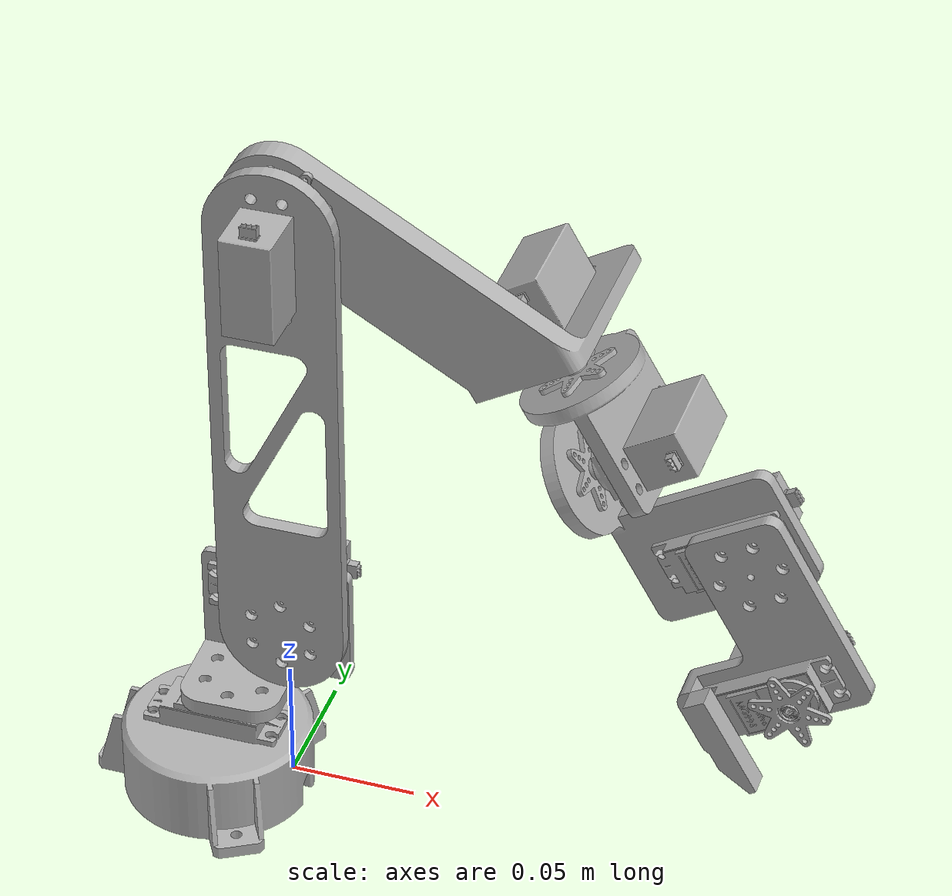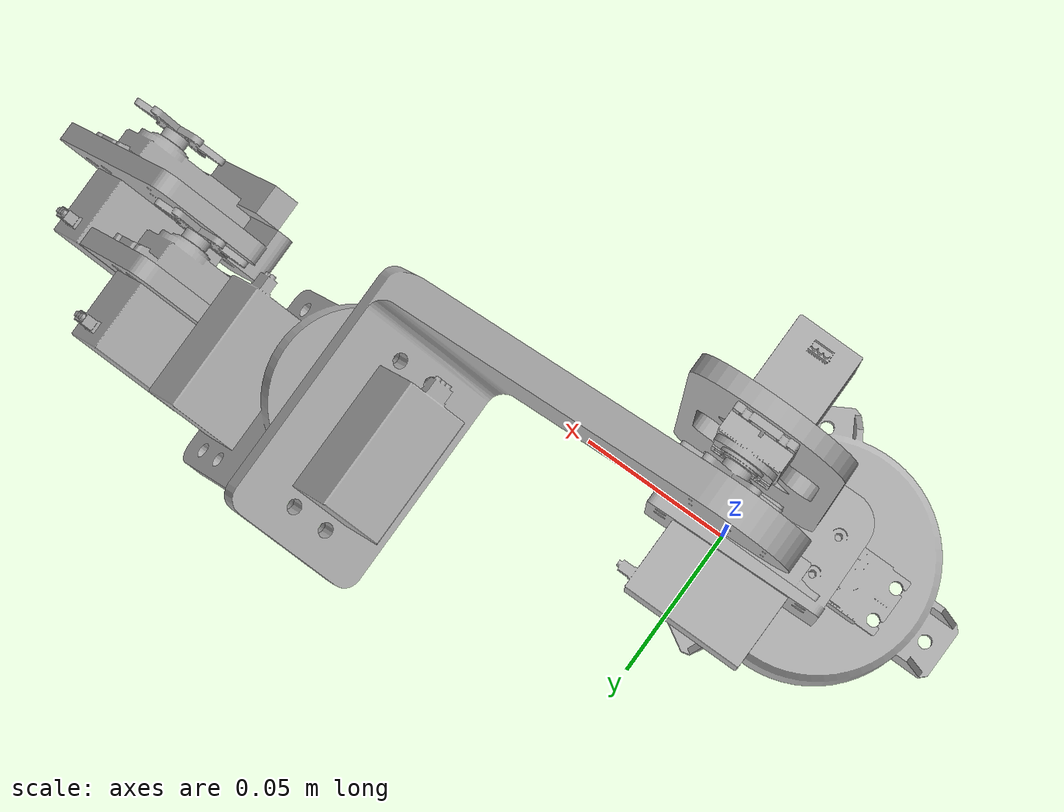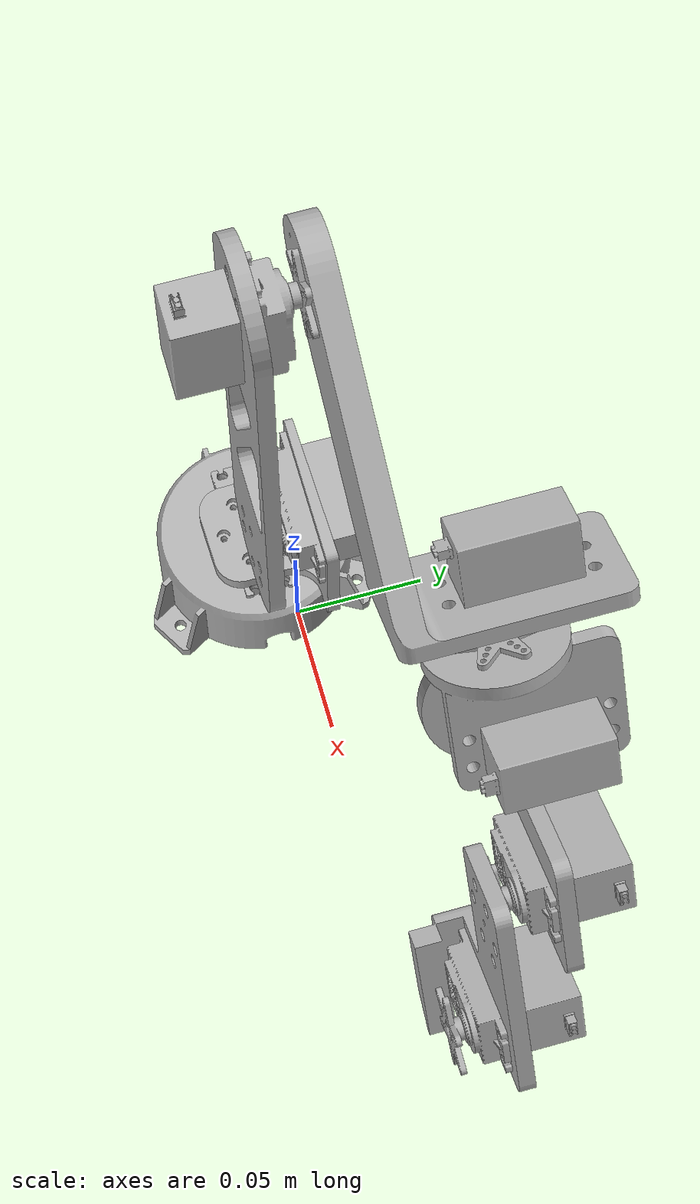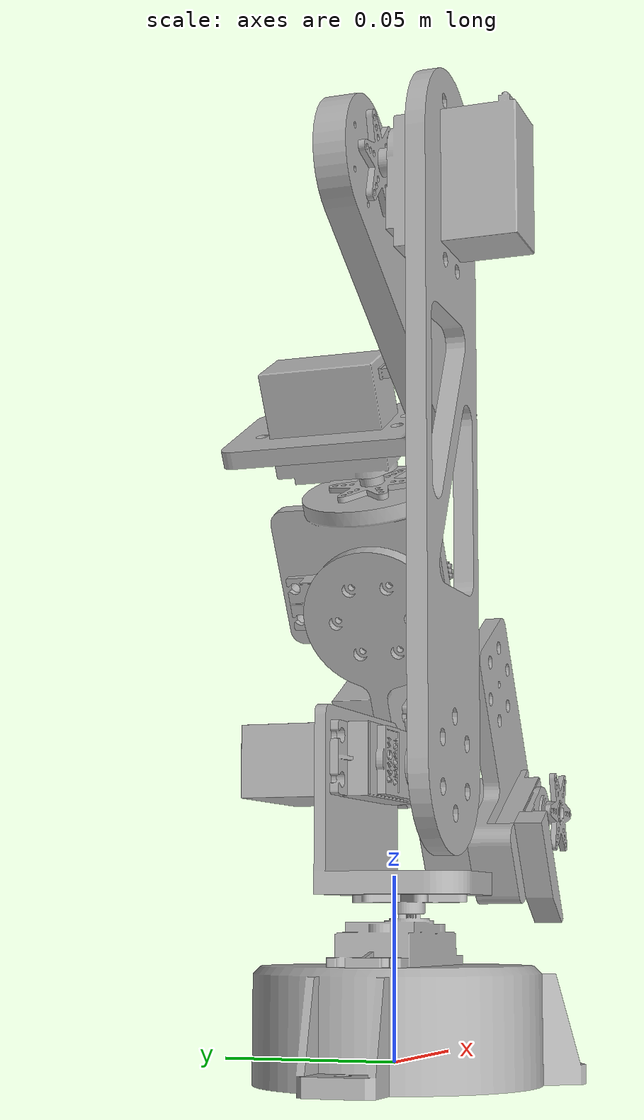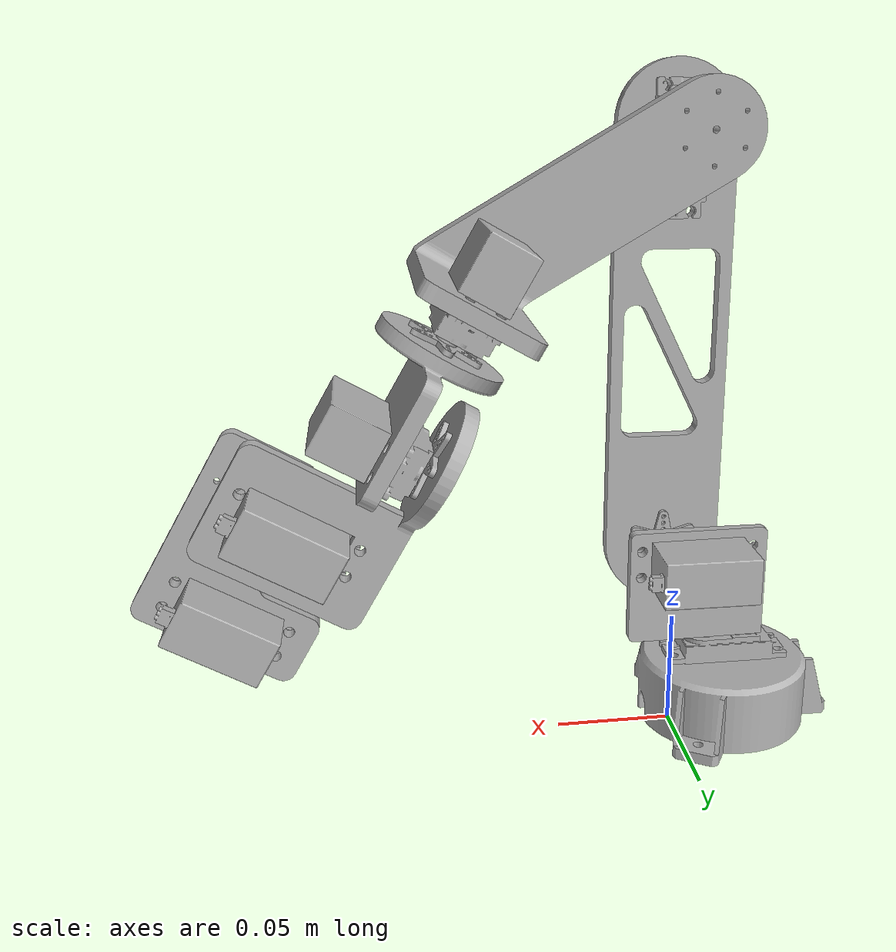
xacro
<?xml version="1.0" ?>
<robot name="ARM" xmlns:xacro="http://www.ros.org/wiki/xacro">

<xacro:include filename="$(find ARM_description)/urdf/materials.xacro" />
<xacro:include filename="$(find ARM_description)/urdf/ARM.trans" />
<xacro:include filename="$(find ARM_description)/urdf/ARM.gazebo" />
<link name="base_link">
  <inertial>
    <origin xyz="-0.027687508233667585 -0.009874493990394872 0.013622191573779039" rpy="0 0 0"/>
    <mass value="0.041165791000229615"/>
    <inertia ixx="2.9e-05" iyy="2.8e-05" izz="4.9e-05" ixy="-0.0" iyz="0.0" ixz="-0.0"/>
  </inertial>
  <visual>
    <origin xyz="0 0 0" rpy="0 0 0"/>
    <geometry>
      <mesh filename="package://ARM_description/meshes/base_link.stl" scale="0.001 0.001 0.001"/>
    </geometry>
    <material name="silver"/>
  </visual>
  <collision>
    <origin xyz="0 0 0" rpy="0 0 0"/>
    <geometry>
      <mesh filename="package://ARM_description/meshes/base_link.stl" scale="0.001 0.001 0.001"/>
    </geometry>
  </collision>
</link>

<link name="servo1_1">
  <inertial>
    <origin xyz="-0.02419827578113218 0.005869936266980562 -0.008916853147137183" rpy="0 0 0"/>
    <mass value="0.03217556547489919"/>
    <inertia ixx="5e-06" iyy="9e-06" izz="6e-06" ixy="-0.0" iyz="-0.0" ixz="-0.0"/>
  </inertial>
  <visual>
    <origin xyz="0.00293 0.015749 -0.026326" rpy="0 0 0"/>
    <geometry>
      <mesh filename="package://ARM_description/meshes/servo1_1.stl" scale="0.001 0.001 0.001"/>
    </geometry>
    <material name="silver"/>
  </visual>
  <collision>
    <origin xyz="0.00293 0.015749 -0.026326" rpy="0 0 0"/>
    <geometry>
      <mesh filename="package://ARM_description/meshes/servo1_1.stl" scale="0.001 0.001 0.001"/>
    </geometry>
  </collision>
</link>

<link name="arm1_1">
  <inertial>
    <origin xyz="-2.2959174622930179e-07 -9.468866538422938e-08 0.0006818047302372884" rpy="0 0 0"/>
    <mass value="0.0008073587201557666"/>
    <inertia ixx="0.0" iyy="0.0" izz="0.0" ixy="-0.0" iyz="0.0" ixz="-0.0"/>
  </inertial>
  <visual>
    <origin xyz="0.017152 0.009879 -0.042636" rpy="0 0 0"/>
    <geometry>
      <mesh filename="package://ARM_description/meshes/arm1_1.stl" scale="0.001 0.001 0.001"/>
    </geometry>
    <material name="silver"/>
  </visual>
  <collision>
    <origin xyz="0.017152 0.009879 -0.042636" rpy="0 0 0"/>
    <geometry>
      <mesh filename="package://ARM_description/meshes/arm1_1.stl" scale="0.001 0.001 0.001"/>
    </geometry>
  </collision>
</link>

<link name="link_1_v1_1">
  <inertial>
    <origin xyz="-0.005726009708927604 0.01543218502870585 0.011798125763824358" rpy="0 0 0"/>
    <mass value="0.016502593024701057"/>
    <inertia ixx="5e-06" iyy="8e-06" izz="7e-06" ixy="-1e-06" iyz="-1e-06" ixz="-1e-06"/>
  </inertial>
  <visual>
    <origin xyz="0.005461 0.016629 -0.044636" rpy="0 0 0"/>
    <geometry>
      <mesh filename="package://ARM_description/meshes/link_1_v1_1.stl" scale="0.001 0.001 0.001"/>
    </geometry>
    <material name="silver"/>
  </visual>
  <collision>
    <origin xyz="0.005461 0.016629 -0.044636" rpy="0 0 0"/>
    <geometry>
      <mesh filename="package://ARM_description/meshes/link_1_v1_1.stl" scale="0.001 0.001 0.001"/>
    </geometry>
  </collision>
</link>

<link name="servo2_1">
  <inertial>
    <origin xyz="-0.024198734963923163 0.008916593288586981 -0.005874134214239088" rpy="0 0 0"/>
    <mass value="0.03217556547489919"/>
    <inertia ixx="5e-06" iyy="6e-06" izz="9e-06" ixy="0.0" iyz="0.0" ixz="-0.0"/>
  </inertial>
  <visual>
    <origin xyz="-0.017426 -0.006431 -0.08651" rpy="0 0 0"/>
    <geometry>
      <mesh filename="package://ARM_description/meshes/servo2_1.stl" scale="0.001 0.001 0.001"/>
    </geometry>
    <material name="silver"/>
  </visual>
  <collision>
    <origin xyz="-0.017426 -0.006431 -0.08651" rpy="0 0 0"/>
    <geometry>
      <mesh filename="package://ARM_description/meshes/servo2_1.stl" scale="0.001 0.001 0.001"/>
    </geometry>
  </collision>
</link>

<link name="arm_2_1">
  <inertial>
    <origin xyz="3.112258121803872e-07 0.00031793541121282083 -1.651702353777651e-07" rpy="0 0 0"/>
    <mass value="0.0008073587201557666"/>
    <inertia ixx="0.0" iyy="0.0" izz="0.0" ixy="0.0" iyz="0.0" ixz="0.0"/>
  </inertial>
  <visual>
    <origin xyz="-0.003203 0.009879 -0.080636" rpy="0 0 0"/>
    <geometry>
      <mesh filename="package://ARM_description/meshes/arm_2_1.stl" scale="0.001 0.001 0.001"/>
    </geometry>
    <material name="silver"/>
  </visual>
  <collision>
    <origin xyz="-0.003203 0.009879 -0.080636" rpy="0 0 0"/>
    <geometry>
      <mesh filename="package://ARM_description/meshes/arm_2_1.stl" scale="0.001 0.001 0.001"/>
    </geometry>
  </collision>
</link>

<link name="link_2_v1_1">
  <inertial>
    <origin xyz="-0.09512720068783112 -0.002991280188389983 -1.4610086869482064e-07" rpy="0 0 0"/>
    <mass value="0.04510837917580033"/>
    <inertia ixx="1.1e-05" iyy="0.000228" izz="0.000217" ixy="-0.0" iyz="0.0" ixz="1e-06"/>
  </inertial>
  <visual>
    <origin xyz="-0.016703 0.010879 -0.080636" rpy="0 0 0"/>
    <geometry>
      <mesh filename="package://ARM_description/meshes/link_2_v1_1.stl" scale="0.001 0.001 0.001"/>
    </geometry>
    <material name="silver"/>
  </visual>
  <collision>
    <origin xyz="-0.016703 0.010879 -0.080636" rpy="0 0 0"/>
    <geometry>
      <mesh filename="package://ARM_description/meshes/link_2_v1_1.stl" scale="0.001 0.001 0.001"/>
    </geometry>
  </collision>
</link>

<link name="servo3_1">
  <inertial>
    <origin xyz="-0.02460164258445402 -0.00891678266590214 -0.005874641233019728" rpy="0 0 0"/>
    <mass value="0.03217556547489919"/>
    <inertia ixx="5e-06" iyy="6e-06" izz="9e-06" ixy="0.0" iyz="-0.0" ixz="0.0"/>
  </inertial>
  <visual>
    <origin xyz="0.142219 0.010879 -0.086506" rpy="0 0 0"/>
    <geometry>
      <mesh filename="package://ARM_description/meshes/servo3_1.stl" scale="0.001 0.001 0.001"/>
    </geometry>
    <material name="silver"/>
  </visual>
  <collision>
    <origin xyz="0.142219 0.010879 -0.086506" rpy="0 0 0"/>
    <geometry>
      <mesh filename="package://ARM_description/meshes/servo3_1.stl" scale="0.001 0.001 0.001"/>
    </geometry>
  </collision>
</link>

<link name="arm3_1">
  <inertial>
    <origin xyz="3.112255078652204e-07 -0.00031812478852707646 3.2781150945127013e-07" rpy="0 0 0"/>
    <mass value="0.0008073587201557666"/>
    <inertia ixx="0.0" iyy="0.0" izz="0.0" ixy="-0.0" iyz="0.0" ixz="-0.0"/>
  </inertial>
  <visual>
    <origin xyz="0.176797 -0.005431 -0.080631" rpy="0 0 0"/>
    <geometry>
      <mesh filename="package://ARM_description/meshes/arm3_1.stl" scale="0.001 0.001 0.001"/>
    </geometry>
    <material name="silver"/>
  </visual>
  <collision>
    <origin xyz="0.176797 -0.005431 -0.080631" rpy="0 0 0"/>
    <geometry>
      <mesh filename="package://ARM_description/meshes/arm3_1.stl" scale="0.001 0.001 0.001"/>
    </geometry>
  </collision>
</link>

<link name="link_3_v1_1">
  <inertial>
    <origin xyz="0.06640093447647316 0.013462771179585144 0.024925384393764766" rpy="0 0 0"/>
    <mass value="0.0665001837063308"/>
    <inertia ixx="6.3e-05" iyy="0.000128" izz="0.000114" ixy="-2.4e-05" iyz="-1.3e-05" ixz="-4.8e-05"/>
  </inertial>
  <visual>
    <origin xyz="0.190297 -0.006431 -0.080631" rpy="0 0 0"/>
    <geometry>
      <mesh filename="package://ARM_description/meshes/link_3_v1_1.stl" scale="0.001 0.001 0.001"/>
    </geometry>
    <material name="silver"/>
  </visual>
  <collision>
    <origin xyz="0.190297 -0.006431 -0.080631" rpy="0 0 0"/>
    <geometry>
      <mesh filename="package://ARM_description/meshes/link_3_v1_1.stl" scale="0.001 0.001 0.001"/>
    </geometry>
  </collision>
</link>

<link name="servo4_1">
  <inertial>
    <origin xyz="-0.00891698534621474 -0.024602048498918137 -0.00587021660379225" rpy="0 0 0"/>
    <mass value="0.03217556547489919"/>
    <inertia ixx="6e-06" iyy="5e-06" izz="9e-06" ixy="0.0" iyz="-0.0" ixz="0.0"/>
  </inertial>
  <visual>
    <origin xyz="0.078682 -0.076009 -0.133884" rpy="0 0 0"/>
    <geometry>
      <mesh filename="package://ARM_description/meshes/servo4_1.stl" scale="0.001 0.001 0.001"/>
    </geometry>
    <material name="silver"/>
  </visual>
  <collision>
    <origin xyz="0.078682 -0.076009 -0.133884" rpy="0 0 0"/>
    <geometry>
      <mesh filename="package://ARM_description/meshes/servo4_1.stl" scale="0.001 0.001 0.001"/>
    </geometry>
  </collision>
</link>

<link name="arm4_1">
  <inertial>
    <origin xyz="-0.00031832746884104257 -9.468900594861163e-08 -1.8564814641131022e-07" rpy="0 0 0"/>
    <mass value="0.0008073587201557666"/>
    <inertia ixx="0.0" iyy="0.0" izz="0.0" ixy="-0.0" iyz="-0.0" ixz="0.0"/>
  </inertial>
  <visual>
    <origin xyz="0.062372 -0.041431 -0.128014" rpy="0 0 0"/>
    <geometry>
      <mesh filename="package://ARM_description/meshes/arm4_1.stl" scale="0.001 0.001 0.001"/>
    </geometry>
    <material name="silver"/>
  </visual>
  <collision>
    <origin xyz="0.062372 -0.041431 -0.128014" rpy="0 0 0"/>
    <geometry>
      <mesh filename="package://ARM_description/meshes/arm4_1.stl" scale="0.001 0.001 0.001"/>
    </geometry>
  </collision>
</link>

<link name="link_4_v1_1">
  <inertial>
    <origin xyz="0.015598136109428007 0.013253959916665618 -0.012008645565057624" rpy="0 0 0"/>
    <mass value="0.024369370112056882"/>
    <inertia ixx="9e-06" iyy="1.3e-05" izz="8e-06" ixy="-0.0" iyz="0.0" ixz="2e-06"/>
  </inertial>
  <visual>
    <origin xyz="0.061372 -0.02974 -0.134764" rpy="0 0 0"/>
    <geometry>
      <mesh filename="package://ARM_description/meshes/link_4_v1_1.stl" scale="0.001 0.001 0.001"/>
    </geometry>
    <material name="silver"/>
  </visual>
  <collision>
    <origin xyz="0.061372 -0.02974 -0.134764" rpy="0 0 0"/>
    <geometry>
      <mesh filename="package://ARM_description/meshes/link_4_v1_1.stl" scale="0.001 0.001 0.001"/>
    </geometry>
  </collision>
</link>

<link name="servo5_1">
  <inertial>
    <origin xyz="-0.005869821305817894 0.008916593288596779 0.024601768162112764" rpy="0 0 0"/>
    <mass value="0.03217556547489919"/>
    <inertia ixx="9e-06" iyy="6e-06" izz="5e-06" ixy="-0.0" iyz="0.0" ixz="0.0"/>
  </inertial>
  <visual>
    <origin xyz="0.015498 -0.041431 -0.093436" rpy="0 0 0"/>
    <geometry>
      <mesh filename="package://ARM_description/meshes/servo5_1.stl" scale="0.001 0.001 0.001"/>
    </geometry>
    <material name="silver"/>
  </visual>
  <collision>
    <origin xyz="0.015498 -0.041431 -0.093436" rpy="0 0 0"/>
    <geometry>
      <mesh filename="package://ARM_description/meshes/servo5_1.stl" scale="0.001 0.001 0.001"/>
    </geometry>
  </collision>
</link>

<link name="arm5_1">
  <inertial>
    <origin xyz="2.0964945105297894e-07 0.00031793541122177027 -1.856481521289588e-07" rpy="0 0 0"/>
    <mass value="0.0008073587201557666"/>
    <inertia ixx="0.0" iyy="0.0" izz="0.0" ixy="0.0" iyz="-0.0" ixz="0.0"/>
  </inertial>
  <visual>
    <origin xyz="0.021368 -0.025121 -0.128014" rpy="0 0 0"/>
    <geometry>
      <mesh filename="package://ARM_description/meshes/arm5_1.stl" scale="0.001 0.001 0.001"/>
    </geometry>
    <material name="silver"/>
  </visual>
  <collision>
    <origin xyz="0.021368 -0.025121 -0.128014" rpy="0 0 0"/>
    <geometry>
      <mesh filename="package://ARM_description/meshes/arm5_1.stl" scale="0.001 0.001 0.001"/>
    </geometry>
  </collision>
</link>

<link name="link_5_v1_1">
  <inertial>
    <origin xyz="0.015942000258827707 0.015167094007291288 -0.008494691741955551" rpy="0 0 0"/>
    <mass value="0.027120030921854613"/>
    <inertia ixx="1.6e-05" iyy="2.3e-05" izz="3.5e-05" ixy="-1e-05" iyz="1e-06" ixz="1e-06"/>
  </inertial>
  <visual>
    <origin xyz="0.009676 -0.024121 -0.134764" rpy="0 0 0"/>
    <geometry>
      <mesh filename="package://ARM_description/meshes/link_5_v1_1.stl" scale="0.001 0.001 0.001"/>
    </geometry>
    <material name="silver"/>
  </visual>
  <collision>
    <origin xyz="0.009676 -0.024121 -0.134764" rpy="0 0 0"/>
    <geometry>
      <mesh filename="package://ARM_description/meshes/link_5_v1_1.stl" scale="0.001 0.001 0.001"/>
    </geometry>
  </collision>
</link>

<link name="servo6_1">
  <inertial>
    <origin xyz="0.005874381503812066 -0.02209805884061384 -0.008916873625420471" rpy="0 0 0"/>
    <mass value="0.03217556547489919"/>
    <inertia ixx="9e-06" iyy="5e-06" izz="6e-06" ixy="0.0" iyz="-0.0" ixz="0.0"/>
  </inertial>
  <visual>
    <origin xyz="-0.020225 -0.081019 -0.128014" rpy="0 0 0"/>
    <geometry>
      <mesh filename="package://ARM_description/meshes/servo6_1.stl" scale="0.001 0.001 0.001"/>
    </geometry>
    <material name="silver"/>
  </visual>
  <collision>
    <origin xyz="-0.020225 -0.081019 -0.128014" rpy="0 0 0"/>
    <geometry>
      <mesh filename="package://ARM_description/meshes/servo6_1.stl" scale="0.001 0.001 0.001"/>
    </geometry>
  </collision>
</link>

<link name="arm6_1">
  <inertial>
    <origin xyz="4.124597055427115e-07 -1.2651133529661962e-08 -0.00031821574808221786" rpy="0 0 0"/>
    <mass value="0.0008073587201557666"/>
    <inertia ixx="0.0" iyy="0.0" izz="0.0" ixy="0.0" iyz="-0.0" ixz="0.0"/>
  </inertial>
  <visual>
    <origin xyz="-0.026099 -0.068897 -0.144324" rpy="0 0 0"/>
    <geometry>
      <mesh filename="package://ARM_description/meshes/arm6_1.stl" scale="0.001 0.001 0.001"/>
    </geometry>
    <material name="silver"/>
  </visual>
  <collision>
    <origin xyz="-0.026099 -0.068897 -0.144324" rpy="0 0 0"/>
    <geometry>
      <mesh filename="package://ARM_description/meshes/arm6_1.stl" scale="0.001 0.001 0.001"/>
    </geometry>
  </collision>
</link>

<link name="link_6_v1_1">
  <inertial>
    <origin xyz="0.018518185432594453 -0.0065174381265777764 0.006131177796755066" rpy="0 0 0"/>
    <mass value="0.025852765929466566"/>
    <inertia ixx="1.4e-05" iyy="1.8e-05" izz="3e-05" ixy="8e-06" iyz="2e-06" ixz="-2e-06"/>
  </inertial>
  <visual>
    <origin xyz="-0.039599 -0.068897 -0.145324" rpy="0 0 0"/>
    <geometry>
      <mesh filename="package://ARM_description/meshes/link_6_v1_1.stl" scale="0.001 0.001 0.001"/>
    </geometry>
    <material name="silver"/>
  </visual>
  <collision>
    <origin xyz="-0.039599 -0.068897 -0.145324" rpy="0 0 0"/>
    <geometry>
      <mesh filename="package://ARM_description/meshes/link_6_v1_1.stl" scale="0.001 0.001 0.001"/>
    </geometry>
  </collision>
</link>

<link name="servo7_1">
  <inertial>
    <origin xyz="-0.0058700877032318854 -0.024198288431977487 -0.008916873625923916" rpy="0 0 0"/>
    <mass value="0.03217556547489919"/>
    <inertia ixx="9e-06" iyy="5e-06" izz="6e-06" ixy="0.0" iyz="-0.0" ixz="0.0"/>
  </inertial>
  <visual>
    <origin xyz="-0.084334 -0.085047 -0.151324" rpy="0 0 0"/>
    <geometry>
      <mesh filename="package://ARM_description/meshes/servo7_1.stl" scale="0.001 0.001 0.001"/>
    </geometry>
    <material name="silver"/>
  </visual>
  <collision>
    <origin xyz="-0.084334 -0.085047 -0.151324" rpy="0 0 0"/>
    <geometry>
      <mesh filename="package://ARM_description/meshes/servo7_1.stl" scale="0.001 0.001 0.001"/>
    </geometry>
  </collision>
</link>

<link name="arm7_1">
  <inertial>
    <origin xyz="-5.674734082639077e-08 -2.422424980746962e-07 -0.00031821574858387214" rpy="0 0 0"/>
    <mass value="0.0008073587201557666"/>
    <inertia ixx="0.0" iyy="0.0" izz="0.0" ixy="0.0" iyz="-0.0" ixz="0.0"/>
  </inertial>
  <visual>
    <origin xyz="-0.078464 -0.070825 -0.167634" rpy="0 0 0"/>
    <geometry>
      <mesh filename="package://ARM_description/meshes/arm7_1.stl" scale="0.001 0.001 0.001"/>
    </geometry>
    <material name="silver"/>
  </visual>
  <collision>
    <origin xyz="-0.078464 -0.070825 -0.167634" rpy="0 0 0"/>
    <geometry>
      <mesh filename="package://ARM_description/meshes/arm7_1.stl" scale="0.001 0.001 0.001"/>
    </geometry>
  </collision>
</link>

<joint name="f1" type="fixed">
  <origin xyz="-0.00293 -0.015749 0.026326" rpy="0 0 0"/>
  <parent link="base_link"/>
  <child link="servo1_1"/>
</joint>

<joint name="joint1" type="revolute">
  <origin xyz="-0.014222 0.00587 0.01631" rpy="0 0 0"/>
  <parent link="servo1_1"/>
  <child link="arm1_1"/>
  <axis xyz="-0.0 -0.0 1.0"/>
  <limit upper="0.0" lower="0.0" effort="100" velocity="100"/>
</joint>

<joint name="f2" type="fixed">
  <origin xyz="0.011691 -0.00675 0.002" rpy="0 0 0"/>
  <parent link="arm1_1"/>
  <child link="link_1_v1_1"/>
</joint>

<joint name="f3" type="fixed">
  <origin xyz="0.022887 0.02306 0.041874" rpy="0 0 0"/>
  <parent link="link_1_v1_1"/>
  <child link="servo2_1"/>
</joint>

<joint name="joint2" type="revolute">
  <origin xyz="-0.014223 -0.01631 -0.005874" rpy="0 0 0"/>
  <parent link="servo2_1"/>
  <child link="arm_2_1"/>
  <axis xyz="-0.0 -1.0 -0.0"/>
  <limit upper="1.570796" lower="-1.570796" effort="100" velocity="100"/>
</joint>

<joint name="f4" type="fixed">
  <origin xyz="0.0135 -0.001 0.0" rpy="0 0 0"/>
  <parent link="arm_2_1"/>
  <child link="link_2_v1_1"/>
</joint>

<joint name="f5" type="fixed">
  <origin xyz="-0.158922 0.0 0.00587" rpy="0 0 0"/>
  <parent link="link_2_v1_1"/>
  <child link="servo3_1"/>
</joint>

<joint name="joint3" type="revolute">
  <origin xyz="-0.034578 0.01631 -0.005875" rpy="0 0 0"/>
  <parent link="servo3_1"/>
  <child link="arm3_1"/>
  <axis xyz="0.0 1.0 0.0"/>
  <limit upper="3.141593" lower="0.0" effort="100" velocity="100"/>
</joint>

<joint name="f6" type="fixed">
  <origin xyz="-0.0135 0.001 0.0" rpy="0 0 0"/>
  <parent link="arm3_1"/>
  <child link="link_3_v1_1"/>
</joint>

<joint name="f7" type="fixed">
  <origin xyz="0.111615 0.069578 0.053253" rpy="0 0 0"/>
  <parent link="link_3_v1_1"/>
  <child link="servo4_1"/>
</joint>

<joint name="joint4" type="revolute">
  <origin xyz="0.01631 -0.034578 -0.00587" rpy="0 0 0"/>
  <parent link="servo4_1"/>
  <child link="arm4_1"/>
  <axis xyz="1.0 -0.0 0.0"/>
  <limit upper="1.570796" lower="-1.570796" effort="100" velocity="100"/>
</joint>

<joint name="f8" type="fixed">
  <origin xyz="0.001 -0.011691 0.00675" rpy="0 0 0"/>
  <parent link="arm4_1"/>
  <child link="link_4_v1_1"/>
</joint>

<joint name="f9" type="fixed">
  <origin xyz="0.045874 0.011691 -0.041328" rpy="0 0 0"/>
  <parent link="link_4_v1_1"/>
  <child link="servo5_1"/>
</joint>

<joint name="joint5 " type="revolute">
  <origin xyz="-0.00587 -0.01631 0.034578" rpy="0 0 0"/>
  <parent link="servo5_1"/>
  <child link="arm5_1"/>
  <axis xyz="-0.0 -1.0 -0.0"/>
  <limit upper="1.570796" lower="-1.570796" effort="100" velocity="100"/>
</joint>

<joint name="f11" type="fixed">
  <origin xyz="0.011692 -0.001 0.00675" rpy="0 0 0"/>
  <parent link="arm5_1"/>
  <child link="link_5_v1_1"/>
</joint>

<joint name="f12" type="fixed">
  <origin xyz="0.029901 0.056898 -0.00675" rpy="0 0 0"/>
  <parent link="link_5_v1_1"/>
  <child link="servo6_1"/>
</joint>

<joint name="joint6 " type="revolute">
  <origin xyz="0.005874 -0.012122 0.01631" rpy="0 0 0"/>
  <parent link="servo6_1"/>
  <child link="arm6_1"/>
  <axis xyz="0.0 0.0 1.0"/>
  <limit upper="1.570796" lower="-1.570796" effort="100" velocity="100"/>
</joint>

<joint name="f13" type="fixed">
  <origin xyz="0.0135 0.0 0.001" rpy="0 0 0"/>
  <parent link="arm6_1"/>
  <child link="link_6_v1_1"/>
</joint>

<joint name="f14" type="fixed">
  <origin xyz="0.044735 0.01615 0.006" rpy="0 0 0"/>
  <parent link="link_6_v1_1"/>
  <child link="servo7_1"/>
</joint>

<joint name="joint7" type="revolute">
  <origin xyz="-0.00587 -0.014222 0.01631" rpy="0 0 0"/>
  <parent link="servo7_1"/>
  <child link="arm7_1"/>
  <axis xyz="0.0 0.0 1.0"/>
  <limit upper="1.570796" lower="-1.570796" effort="100" velocity="100"/>
</joint>

</robot>

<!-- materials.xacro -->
<robot name="ARM" xmlns:xacro="http://www.ros.org/wiki/xacro" >

<material name="silver">
  <color rgba="0.700 0.700 0.700 1.000"/>
</material>

</robot>

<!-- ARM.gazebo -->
<robot name="ARM" xmlns:xacro="http://www.ros.org/wiki/xacro" >

<xacro:property name="body_color" value="Gazebo/Silver" />

<gazebo>
  <plugin name="control" filename="libgazebo_ros_control.so"/>
</gazebo>
<gazebo reference="base_link">
  <material>${body_color}</material>
  <mu1>0.2</mu1>
  <mu2>0.2</mu2>
  <selfCollide>true</selfCollide>
  <gravity>true</gravity>
</gazebo>

<gazebo reference="servo1_1">
  <material>${body_color}</material>
  <mu1>0.2</mu1>
  <mu2>0.2</mu2>
  <selfCollide>true</selfCollide>
</gazebo>

<gazebo reference="arm1_1">
  <material>${body_color}</material>
  <mu1>0.2</mu1>
  <mu2>0.2</mu2>
  <selfCollide>true</selfCollide>
</gazebo>

<gazebo reference="link_1_v1_1">
  <material>${body_color}</material>
  <mu1>0.2</mu1>
  <mu2>0.2</mu2>
  <selfCollide>true</selfCollide>
</gazebo>

<gazebo reference="servo2_1">
  <material>${body_color}</material>
  <mu1>0.2</mu1>
  <mu2>0.2</mu2>
  <selfCollide>true</selfCollide>
</gazebo>

<gazebo reference="arm_2_1">
  <material>${body_color}</material>
  <mu1>0.2</mu1>
  <mu2>0.2</mu2>
  <selfCollide>true</selfCollide>
</gazebo>

<gazebo reference="link_2_v1_1">
  <material>${body_color}</material>
  <mu1>0.2</mu1>
  <mu2>0.2</mu2>
  <selfCollide>true</selfCollide>
</gazebo>

<gazebo reference="servo3_1">
  <material>${body_color}</material>
  <mu1>0.2</mu1>
  <mu2>0.2</mu2>
  <selfCollide>true</selfCollide>
</gazebo>

<gazebo reference="arm3_1">
  <material>${body_color}</material>
  <mu1>0.2</mu1>
  <mu2>0.2</mu2>
  <selfCollide>true</selfCollide>
</gazebo>

<gazebo reference="link_3_v1_1">
  <material>${body_color}</material>
  <mu1>0.2</mu1>
  <mu2>0.2</mu2>
  <selfCollide>true</selfCollide>
</gazebo>

<gazebo reference="servo4_1">
  <material>${body_color}</material>
  <mu1>0.2</mu1>
  <mu2>0.2</mu2>
  <selfCollide>true</selfCollide>
</gazebo>

<gazebo reference="arm4_1">
  <material>${body_color}</material>
  <mu1>0.2</mu1>
  <mu2>0.2</mu2>
  <selfCollide>true</selfCollide>
</gazebo>

<gazebo reference="link_4_v1_1">
  <material>${body_color}</material>
  <mu1>0.2</mu1>
  <mu2>0.2</mu2>
  <selfCollide>true</selfCollide>
</gazebo>

<gazebo reference="servo5_1">
  <material>${body_color}</material>
  <mu1>0.2</mu1>
  <mu2>0.2</mu2>
  <selfCollide>true</selfCollide>
</gazebo>

<gazebo reference="arm5_1">
  <material>${body_color}</material>
  <mu1>0.2</mu1>
  <mu2>0.2</mu2>
  <selfCollide>true</selfCollide>
</gazebo>

<gazebo reference="link_5_v1_1">
  <material>${body_color}</material>
  <mu1>0.2</mu1>
  <mu2>0.2</mu2>
  <selfCollide>true</selfCollide>
</gazebo>

<gazebo reference="servo6_1">
  <material>${body_color}</material>
  <mu1>0.2</mu1>
  <mu2>0.2</mu2>
  <selfCollide>true</selfCollide>
</gazebo>

<gazebo reference="arm6_1">
  <material>${body_color}</material>
  <mu1>0.2</mu1>
  <mu2>0.2</mu2>
  <selfCollide>true</selfCollide>
</gazebo>

<gazebo reference="link_6_v1_1">
  <material>${body_color}</material>
  <mu1>0.2</mu1>
  <mu2>0.2</mu2>
  <selfCollide>true</selfCollide>
</gazebo>

<gazebo reference="servo7_1">
  <material>${body_color}</material>
  <mu1>0.2</mu1>
  <mu2>0.2</mu2>
  <selfCollide>true</selfCollide>
</gazebo>

<gazebo reference="arm7_1">
  <material>${body_color}</material>
  <mu1>0.2</mu1>
  <mu2>0.2</mu2>
  <selfCollide>true</selfCollide>
</gazebo>

</robot>
